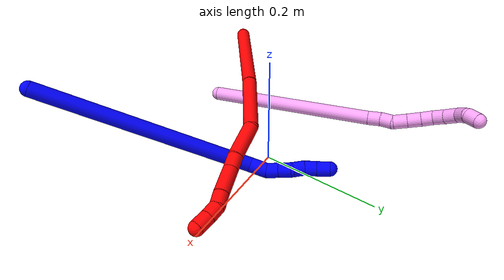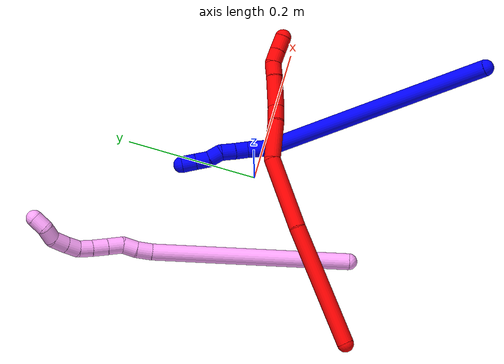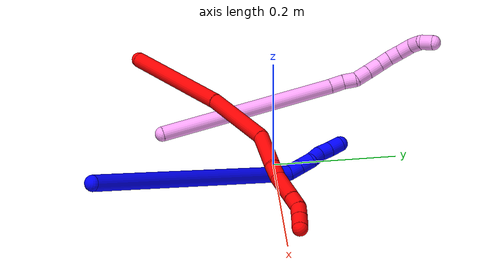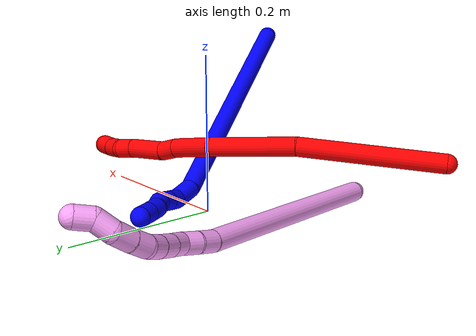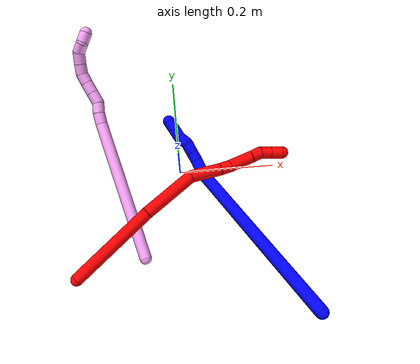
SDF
<sdf version="1.7">
 <world name="default">
  <model name="1">
   <static>0</static>
   <link name="1">
    <collision name="collision-cylinder-e_1_1_4">
     <pose>-0.010049 0.006523 -0.180957 -3.10556 -0.055438 1.98908</pose>
     <geometry><cylinder><radius>0.0125</radius><length>0.362706</length></cylinder></geometry>
     <surface>
      <friction><ode><mu>1.16</mu><mu2>1.16</mu2><slip1>0</slip1><slip2>0</slip2></ode></friction>
      <contact><ode><kp>1e+06</kp><kd>1</kd><max_vel>0</max_vel><min_depth>0.001</min_depth></ode></contact>
     </surface>
    </collision>
    <visual name="visual-cylinder-e_1_1_4">
     <pose>-0.010049 0.006523 -0.180957 -3.10556 -0.055438 1.98908</pose>
     <geometry><cylinder><radius>0.0125</radius><length>0.362706</length></cylinder></geometry>
     <material><ambient>0 0 1 1</ambient></material>
    </visual>
    <collision name="collision-cylinder-e_2_4_5">
     <pose>-0.019141 0.017984 -0.376568 -2.81655 0.06178 -0.372534</pose>
     <geometry><cylinder><radius>0.0125</radius><length>0.030987</length></cylinder></geometry>
     <surface>
      <friction><ode><mu>1.16</mu><mu2>1.16</mu2><slip1>0</slip1><slip2>0</slip2></ode></friction>
      <contact><ode><kp>1e+06</kp><kd>1</kd><max_vel>0</max_vel><min_depth>0.001</min_depth></ode></contact>
     </surface>
    </collision>
    <visual name="visual-cylinder-e_2_4_5">
     <pose>-0.019141 0.017984 -0.376568 -2.81655 0.06178 -0.372534</pose>
     <geometry><cylinder><radius>0.0125</radius><length>0.030987</length></cylinder></geometry>
     <material><ambient>0 0 1 1</ambient></material>
    </visual>
    <collision name="collision-cylinder-e_3_5_6">
     <pose>-0.020491 0.029134 -0.399525 -2.49933 -0.21892 0.638182</pose>
     <geometry><cylinder><radius>0.0125</radius><length>0.021246</length></cylinder></geometry>
     <surface>
      <friction><ode><mu>1.16</mu><mu2>1.16</mu2><slip1>0</slip1><slip2>0</slip2></ode></friction>
      <contact><ode><kp>1e+06</kp><kd>1</kd><max_vel>0</max_vel><min_depth>0.001</min_depth></ode></contact>
     </surface>
    </collision>
    <visual name="visual-cylinder-e_3_5_6">
     <pose>-0.020491 0.029134 -0.399525 -2.49933 -0.21892 0.638182</pose>
     <geometry><cylinder><radius>0.0125</radius><length>0.021246</length></cylinder></geometry>
     <material><ambient>0 0 1 1</ambient></material>
    </visual>
    <collision name="collision-cylinder-e_4_6_7">
     <pose>-0.025046 0.042118 -0.416288 -2.46649 -0.204519 0.56888</pose>
     <geometry><cylinder><radius>0.0125</radius><length>0.022135</length></cylinder></geometry>
     <surface>
      <friction><ode><mu>1.16</mu><mu2>1.16</mu2><slip1>0</slip1><slip2>0</slip2></ode></friction>
      <contact><ode><kp>1e+06</kp><kd>1</kd><max_vel>0</max_vel><min_depth>0.001</min_depth></ode></contact>
     </surface>
    </collision>
    <visual name="visual-cylinder-e_4_6_7">
     <pose>-0.025046 0.042118 -0.416288 -2.46649 -0.204519 0.56888</pose>
     <geometry><cylinder><radius>0.0125</radius><length>0.022135</length></cylinder></geometry>
     <material><ambient>0 0 1 1</ambient></material>
    </visual>
    <collision name="collision-cylinder-e_5_7_8">
     <pose>-0.031886 0.051495 -0.433471 -2.85143 -0.467189 2.04022</pose>
     <geometry><cylinder><radius>0.0125</radius><length>0.020394</length></cylinder></geometry>
     <surface>
      <friction><ode><mu>1.16</mu><mu2>1.16</mu2><slip1>0</slip1><slip2>0</slip2></ode></friction>
      <contact><ode><kp>1e+06</kp><kd>1</kd><max_vel>0</max_vel><min_depth>0.001</min_depth></ode></contact>
     </surface>
    </collision>
    <visual name="visual-cylinder-e_5_7_8">
     <pose>-0.031886 0.051495 -0.433471 -2.85143 -0.467189 2.04022</pose>
     <geometry><cylinder><radius>0.0125</radius><length>0.020394</length></cylinder></geometry>
     <material><ambient>0 0 1 1</ambient></material>
    </visual>
    <collision name="collision-cylinder-e_6_8_9">
     <pose>-0.038349 0.058723 -0.45122 -2.66821 -0.182431 0.724912</pose>
     <geometry><cylinder><radius>0.0125</radius><length>0.020623</length></cylinder></geometry>
     <surface>
      <friction><ode><mu>1.16</mu><mu2>1.16</mu2><slip1>0</slip1><slip2>0</slip2></ode></friction>
      <contact><ode><kp>1e+06</kp><kd>1</kd><max_vel>0</max_vel><min_depth>0.001</min_depth></ode></contact>
     </surface>
    </collision>
    <visual name="visual-cylinder-e_6_8_9">
     <pose>-0.038349 0.058723 -0.45122 -2.66821 -0.182431 0.724912</pose>
     <geometry><cylinder><radius>0.0125</radius><length>0.020623</length></cylinder></geometry>
     <material><ambient>0 0 1 1</ambient></material>
    </visual>
    <collision name="collision-cylinder-e_7_9_2">
     <pose>-0.042662 0.06852 -0.469588 -2.63585 -0.224773 0.823591</pose>
     <geometry><cylinder><radius>0.0125</radius><length>0.021909</length></cylinder></geometry>
     <surface>
      <friction><ode><mu>1.16</mu><mu2>1.16</mu2><slip1>0</slip1><slip2>0</slip2></ode></friction>
      <contact><ode><kp>1e+06</kp><kd>1</kd><max_vel>0</max_vel><min_depth>0.001</min_depth></ode></contact>
     </surface>
    </collision>
    <visual name="visual-cylinder-e_7_9_2">
     <pose>-0.042662 0.06852 -0.469588 -2.63585 -0.224773 0.823591</pose>
     <geometry><cylinder><radius>0.0125</radius><length>0.021909</length></cylinder></geometry>
     <material><ambient>0 0 1 1</ambient></material>
    </visual>
    <collision name="collision-sphere-2">
     <pose>-0.045103 0.073693 -0.47893 0 -0 0</pose>
     <geometry><sphere><radius>0.0125</radius></sphere></geometry>
     <surface>
      <friction><ode><mu>1.16</mu><mu2>1.16</mu2><slip1>0</slip1><slip2>0</slip2></ode></friction>
      <contact><ode><kp>1e+06</kp><kd>1</kd><max_vel>0</max_vel><min_depth>0.001</min_depth></ode></contact>
     </surface>
    </collision>
    <visual name="visual-sphere-2">
     <pose>-0.045103 0.073693 -0.47893 0 -0 0</pose>
     <geometry><sphere><radius>0.0125</radius></sphere></geometry>
     <material><ambient>0 0 1 1</ambient></material>
    </visual>
    <collision name="collision-sphere-9">
     <pose>-0.04022 0.063346 -0.460246 0 -0 0</pose>
     <geometry><sphere><radius>0.0125</radius></sphere></geometry>
     <surface>
      <friction><ode><mu>1.16</mu><mu2>1.16</mu2><slip1>0</slip1><slip2>0</slip2></ode></friction>
      <contact><ode><kp>1e+06</kp><kd>1</kd><max_vel>0</max_vel><min_depth>0.001</min_depth></ode></contact>
     </surface>
    </collision>
    <visual name="visual-sphere-9">
     <pose>-0.04022 0.063346 -0.460246 0 -0 0</pose>
     <geometry><sphere><radius>0.0125</radius></sphere></geometry>
     <material><ambient>0 0 1 1</ambient></material>
    </visual>
    <collision name="collision-sphere-4">
     <pose>-0.020097 0.013046 -0.361914 0 -0 0</pose>
     <geometry><sphere><radius>0.0125</radius></sphere></geometry>
     <surface>
      <friction><ode><mu>1.16</mu><mu2>1.16</mu2><slip1>0</slip1><slip2>0</slip2></ode></friction>
      <contact><ode><kp>1e+06</kp><kd>1</kd><max_vel>0</max_vel><min_depth>0.001</min_depth></ode></contact>
     </surface>
    </collision>
    <visual name="visual-sphere-4">
     <pose>-0.020097 0.013046 -0.361914 0 -0 0</pose>
     <geometry><sphere><radius>0.0125</radius></sphere></geometry>
     <material><ambient>0 0 1 1</ambient></material>
    </visual>
    <collision name="collision-sphere-1">
     <geometry><sphere><radius>0.0125</radius></sphere></geometry>
     <surface>
      <friction><ode><mu>1.16</mu><mu2>1.16</mu2><slip1>0</slip1><slip2>0</slip2></ode></friction>
      <contact><ode><kp>1e+06</kp><kd>1</kd><max_vel>0</max_vel><min_depth>0.001</min_depth></ode></contact>
     </surface>
    </collision>
    <visual name="visual-sphere-1">
     <geometry><sphere><radius>0.0125</radius></sphere></geometry>
     <material><ambient>0 0 1 1</ambient></material>
    </visual>
    <collision name="collision-sphere-8">
     <pose>-0.036479 0.0541 -0.442195 0 -0 0</pose>
     <geometry><sphere><radius>0.0125</radius></sphere></geometry>
     <surface>
      <friction><ode><mu>1.16</mu><mu2>1.16</mu2><slip1>0</slip1><slip2>0</slip2></ode></friction>
      <contact><ode><kp>1e+06</kp><kd>1</kd><max_vel>0</max_vel><min_depth>0.001</min_depth></ode></contact>
     </surface>
    </collision>
    <visual name="visual-sphere-8">
     <pose>-0.036479 0.0541 -0.442195 0 -0 0</pose>
     <geometry><sphere><radius>0.0125</radius></sphere></geometry>
     <material><ambient>0 0 1 1</ambient></material>
    </visual>
    <collision name="collision-sphere-5">
     <pose>-0.018184 0.022922 -0.391222 0 -0 0</pose>
     <geometry><sphere><radius>0.0125</radius></sphere></geometry>
     <surface>
      <friction><ode><mu>1.16</mu><mu2>1.16</mu2><slip1>0</slip1><slip2>0</slip2></ode></friction>
      <contact><ode><kp>1e+06</kp><kd>1</kd><max_vel>0</max_vel><min_depth>0.001</min_depth></ode></contact>
     </surface>
    </collision>
    <visual name="visual-sphere-5">
     <pose>-0.018184 0.022922 -0.391222 0 -0 0</pose>
     <geometry><sphere><radius>0.0125</radius></sphere></geometry>
     <material><ambient>0 0 1 1</ambient></material>
    </visual>
    <collision name="collision-sphere-6">
     <pose>-0.022798 0.035345 -0.407828 0 -0 0</pose>
     <geometry><sphere><radius>0.0125</radius></sphere></geometry>
     <surface>
      <friction><ode><mu>1.16</mu><mu2>1.16</mu2><slip1>0</slip1><slip2>0</slip2></ode></friction>
      <contact><ode><kp>1e+06</kp><kd>1</kd><max_vel>0</max_vel><min_depth>0.001</min_depth></ode></contact>
     </surface>
    </collision>
    <visual name="visual-sphere-6">
     <pose>-0.022798 0.035345 -0.407828 0 -0 0</pose>
     <geometry><sphere><radius>0.0125</radius></sphere></geometry>
     <material><ambient>0 0 1 1</ambient></material>
    </visual>
    <collision name="collision-sphere-7">
     <pose>-0.027294 0.04889 -0.424747 0 -0 0</pose>
     <geometry><sphere><radius>0.0125</radius></sphere></geometry>
     <surface>
      <friction><ode><mu>1.16</mu><mu2>1.16</mu2><slip1>0</slip1><slip2>0</slip2></ode></friction>
      <contact><ode><kp>1e+06</kp><kd>1</kd><max_vel>0</max_vel><min_depth>0.001</min_depth></ode></contact>
     </surface>
    </collision>
    <visual name="visual-sphere-7">
     <pose>-0.027294 0.04889 -0.424747 0 -0 0</pose>
     <geometry><sphere><radius>0.0125</radius></sphere></geometry>
     <material><ambient>0 0 1 1</ambient></material>
    </visual>
    <inertial>
     <pose>-0.015207 0.016474 -0.246879 0 -0 0</pose>
     <mass>0.5</mass>
     <inertia>
      <ixx>0.002031</ixx>
      <ixy>0</ixy>
      <ixz>0</ixz>
      <iyy>0.005272</iyy>
      <iyz>0</iyz>
      <izz>3.7e-05</izz>
     </inertia>
    </inertial>
   </link>
   <pose>0.220265 -0.288501 0.169025 1.03811 0.402343 0.28962</pose>
  </model>
  <model name="2">
   <static>0</static>
   <link name="2">
    <collision name="collision-cylinder-e_1_1_4">
     <pose>-0.032811 0.083884 -0.023309 -1.84184 -0.36041 0.470538</pose>
     <geometry><cylinder><radius>0.0125</radius><length>0.18608</length></cylinder></geometry>
     <surface>
      <friction><ode><mu>1.16</mu><mu2>1.16</mu2><slip1>0</slip1><slip2>0</slip2></ode></friction>
      <contact><ode><kp>1e+06</kp><kd>1</kd><max_vel>0</max_vel><min_depth>0.001</min_depth></ode></contact>
     </surface>
    </collision>
    <visual name="visual-cylinder-e_1_1_4">
     <pose>-0.032811 0.083884 -0.023309 -1.84184 -0.36041 0.470538</pose>
     <geometry><cylinder><radius>0.0125</radius><length>0.18608</length></cylinder></geometry>
     <material><ambient>1 0 0 1</ambient></material>
    </visual>
    <collision name="collision-cylinder-e_2_4_5">
     <pose>-0.07971 0.218052 -0.066578 -1.94865 -0.254731 0.372834</pose>
     <geometry><cylinder><radius>0.0125</radius><length>0.111809</length></cylinder></geometry>
     <surface>
      <friction><ode><mu>1.16</mu><mu2>1.16</mu2><slip1>0</slip1><slip2>0</slip2></ode></friction>
      <contact><ode><kp>1e+06</kp><kd>1</kd><max_vel>0</max_vel><min_depth>0.001</min_depth></ode></contact>
     </surface>
    </collision>
    <visual name="visual-cylinder-e_2_4_5">
     <pose>-0.07971 0.218052 -0.066578 -1.94865 -0.254731 0.372834</pose>
     <geometry><cylinder><radius>0.0125</radius><length>0.111809</length></cylinder></geometry>
     <material><ambient>1 0 0 1</ambient></material>
    </visual>
    <collision name="collision-cylinder-e_3_5_6">
     <pose>-0.088161 0.297226 -0.095486 -1.87118 0.184234 -0.249347</pose>
     <geometry><cylinder><radius>0.0125</radius><length>0.06153</length></cylinder></geometry>
     <surface>
      <friction><ode><mu>1.16</mu><mu2>1.16</mu2><slip1>0</slip1><slip2>0</slip2></ode></friction>
      <contact><ode><kp>1e+06</kp><kd>1</kd><max_vel>0</max_vel><min_depth>0.001</min_depth></ode></contact>
     </surface>
    </collision>
    <visual name="visual-cylinder-e_3_5_6">
     <pose>-0.088161 0.297226 -0.095486 -1.87118 0.184234 -0.249347</pose>
     <geometry><cylinder><radius>0.0125</radius><length>0.06153</length></cylinder></geometry>
     <material><ambient>1 0 0 1</ambient></material>
    </visual>
    <collision name="collision-cylinder-e_4_6_7">
     <pose>-0.080582 0.337008 -0.109727 -2.02313 0.159077 -0.253339</pose>
     <geometry><cylinder><radius>0.0125</radius><length>0.02453</length></cylinder></geometry>
     <surface>
      <friction><ode><mu>1.16</mu><mu2>1.16</mu2><slip1>0</slip1><slip2>0</slip2></ode></friction>
      <contact><ode><kp>1e+06</kp><kd>1</kd><max_vel>0</max_vel><min_depth>0.001</min_depth></ode></contact>
     </surface>
    </collision>
    <visual name="visual-cylinder-e_4_6_7">
     <pose>-0.080582 0.337008 -0.109727 -2.02313 0.159077 -0.253339</pose>
     <geometry><cylinder><radius>0.0125</radius><length>0.02453</length></cylinder></geometry>
     <material><ambient>1 0 0 1</ambient></material>
    </visual>
    <collision name="collision-cylinder-e_5_7_8">
     <pose>-0.078611 0.371725 -0.120901 -1.8128 0.001125 -0.001437</pose>
     <geometry><cylinder><radius>0.0125</radius><length>0.049078</length></cylinder></geometry>
     <surface>
      <friction><ode><mu>1.16</mu><mu2>1.16</mu2><slip1>0</slip1><slip2>0</slip2></ode></friction>
      <contact><ode><kp>1e+06</kp><kd>1</kd><max_vel>0</max_vel><min_depth>0.001</min_depth></ode></contact>
     </surface>
    </collision>
    <visual name="visual-cylinder-e_5_7_8">
     <pose>-0.078611 0.371725 -0.120901 -1.8128 0.001125 -0.001437</pose>
     <geometry><cylinder><radius>0.0125</radius><length>0.049078</length></cylinder></geometry>
     <material><ambient>1 0 0 1</ambient></material>
    </visual>
    <collision name="collision-cylinder-e_6_8_9">
     <pose>-0.078625 0.405884 -0.130453 -1.9121 -0.003727 0.005279</pose>
     <geometry><cylinder><radius>0.0125</radius><length>0.021937</length></cylinder></geometry>
     <surface>
      <friction><ode><mu>1.16</mu><mu2>1.16</mu2><slip1>0</slip1><slip2>0</slip2></ode></friction>
      <contact><ode><kp>1e+06</kp><kd>1</kd><max_vel>0</max_vel><min_depth>0.001</min_depth></ode></contact>
     </surface>
    </collision>
    <visual name="visual-cylinder-e_6_8_9">
     <pose>-0.078625 0.405884 -0.130453 -1.9121 -0.003727 0.005279</pose>
     <geometry><cylinder><radius>0.0125</radius><length>0.021937</length></cylinder></geometry>
     <material><ambient>1 0 0 1</ambient></material>
    </visual>
    <collision name="collision-cylinder-e_7_9_10">
     <pose>-0.07477 0.426042 -0.135549 -1.71487 0.374011 -0.430521</pose>
     <geometry><cylinder><radius>0.0125</radius><length>0.021324</length></cylinder></geometry>
     <surface>
      <friction><ode><mu>1.16</mu><mu2>1.16</mu2><slip1>0</slip1><slip2>0</slip2></ode></friction>
      <contact><ode><kp>1e+06</kp><kd>1</kd><max_vel>0</max_vel><min_depth>0.001</min_depth></ode></contact>
     </surface>
    </collision>
    <visual name="visual-cylinder-e_7_9_10">
     <pose>-0.07477 0.426042 -0.135549 -1.71487 0.374011 -0.430521</pose>
     <geometry><cylinder><radius>0.0125</radius><length>0.021324</length></cylinder></geometry>
     <material><ambient>1 0 0 1</ambient></material>
    </visual>
    <collision name="collision-cylinder-e_8_10_2">
     <pose>-0.066586 0.446906 -0.137488 -1.61726 0.370072 -0.38725</pose>
     <geometry><cylinder><radius>0.0125</radius><length>0.023712</length></cylinder></geometry>
     <surface>
      <friction><ode><mu>1.16</mu><mu2>1.16</mu2><slip1>0</slip1><slip2>0</slip2></ode></friction>
      <contact><ode><kp>1e+06</kp><kd>1</kd><max_vel>0</max_vel><min_depth>0.001</min_depth></ode></contact>
     </surface>
    </collision>
    <visual name="visual-cylinder-e_8_10_2">
     <pose>-0.066586 0.446906 -0.137488 -1.61726 0.370072 -0.38725</pose>
     <geometry><cylinder><radius>0.0125</radius><length>0.023712</length></cylinder></geometry>
     <material><ambient>1 0 0 1</ambient></material>
    </visual>
    <collision name="collision-sphere-2">
     <pose>-0.062298 0.457948 -0.138001 0 -0 0</pose>
     <geometry><sphere><radius>0.0125</radius></sphere></geometry>
     <surface>
      <friction><ode><mu>1.16</mu><mu2>1.16</mu2><slip1>0</slip1><slip2>0</slip2></ode></friction>
      <contact><ode><kp>1e+06</kp><kd>1</kd><max_vel>0</max_vel><min_depth>0.001</min_depth></ode></contact>
     </surface>
    </collision>
    <visual name="visual-sphere-2">
     <pose>-0.062298 0.457948 -0.138001 0 -0 0</pose>
     <geometry><sphere><radius>0.0125</radius></sphere></geometry>
     <material><ambient>1 0 0 1</ambient></material>
    </visual>
    <collision name="collision-sphere-10">
     <pose>-0.070875 0.435865 -0.136974 0 -0 0</pose>
     <geometry><sphere><radius>0.0125</radius></sphere></geometry>
     <surface>
      <friction><ode><mu>1.16</mu><mu2>1.16</mu2><slip1>0</slip1><slip2>0</slip2></ode></friction>
      <contact><ode><kp>1e+06</kp><kd>1</kd><max_vel>0</max_vel><min_depth>0.001</min_depth></ode></contact>
     </surface>
    </collision>
    <visual name="visual-sphere-10">
     <pose>-0.070875 0.435865 -0.136974 0 -0 0</pose>
     <geometry><sphere><radius>0.0125</radius></sphere></geometry>
     <material><ambient>1 0 0 1</ambient></material>
    </visual>
    <collision name="collision-sphere-9">
     <pose>-0.078665 0.41622 -0.134124 0 -0 0</pose>
     <geometry><sphere><radius>0.0125</radius></sphere></geometry>
     <surface>
      <friction><ode><mu>1.16</mu><mu2>1.16</mu2><slip1>0</slip1><slip2>0</slip2></ode></friction>
      <contact><ode><kp>1e+06</kp><kd>1</kd><max_vel>0</max_vel><min_depth>0.001</min_depth></ode></contact>
     </surface>
    </collision>
    <visual name="visual-sphere-9">
     <pose>-0.078665 0.41622 -0.134124 0 -0 0</pose>
     <geometry><sphere><radius>0.0125</radius></sphere></geometry>
     <material><ambient>1 0 0 1</ambient></material>
    </visual>
    <collision name="collision-sphere-4">
     <pose>-0.065622 0.167768 -0.046619 0 -0 0</pose>
     <geometry><sphere><radius>0.0125</radius></sphere></geometry>
     <surface>
      <friction><ode><mu>1.16</mu><mu2>1.16</mu2><slip1>0</slip1><slip2>0</slip2></ode></friction>
      <contact><ode><kp>1e+06</kp><kd>1</kd><max_vel>0</max_vel><min_depth>0.001</min_depth></ode></contact>
     </surface>
    </collision>
    <visual name="visual-sphere-4">
     <pose>-0.065622 0.167768 -0.046619 0 -0 0</pose>
     <geometry><sphere><radius>0.0125</radius></sphere></geometry>
     <material><ambient>1 0 0 1</ambient></material>
    </visual>
    <collision name="collision-sphere-1">
     <geometry><sphere><radius>0.0125</radius></sphere></geometry>
     <surface>
      <friction><ode><mu>1.16</mu><mu2>1.16</mu2><slip1>0</slip1><slip2>0</slip2></ode></friction>
      <contact><ode><kp>1e+06</kp><kd>1</kd><max_vel>0</max_vel><min_depth>0.001</min_depth></ode></contact>
     </surface>
    </collision>
    <visual name="visual-sphere-1">
     <geometry><sphere><radius>0.0125</radius></sphere></geometry>
     <material><ambient>1 0 0 1</ambient></material>
    </visual>
    <collision name="collision-sphere-8">
     <pose>-0.078584 0.395548 -0.126782 0 -0 0</pose>
     <geometry><sphere><radius>0.0125</radius></sphere></geometry>
     <surface>
      <friction><ode><mu>1.16</mu><mu2>1.16</mu2><slip1>0</slip1><slip2>0</slip2></ode></friction>
      <contact><ode><kp>1e+06</kp><kd>1</kd><max_vel>0</max_vel><min_depth>0.001</min_depth></ode></contact>
     </surface>
    </collision>
    <visual name="visual-sphere-8">
     <pose>-0.078584 0.395548 -0.126782 0 -0 0</pose>
     <geometry><sphere><radius>0.0125</radius></sphere></geometry>
     <material><ambient>1 0 0 1</ambient></material>
    </visual>
    <collision name="collision-sphere-5">
     <pose>-0.093797 0.268336 -0.086537 0 -0 0</pose>
     <geometry><sphere><radius>0.0125</radius></sphere></geometry>
     <surface>
      <friction><ode><mu>1.16</mu><mu2>1.16</mu2><slip1>0</slip1><slip2>0</slip2></ode></friction>
      <contact><ode><kp>1e+06</kp><kd>1</kd><max_vel>0</max_vel><min_depth>0.001</min_depth></ode></contact>
     </surface>
    </collision>
    <visual name="visual-sphere-5">
     <pose>-0.093797 0.268336 -0.086537 0 -0 0</pose>
     <geometry><sphere><radius>0.0125</radius></sphere></geometry>
     <material><ambient>1 0 0 1</ambient></material>
    </visual>
    <collision name="collision-sphere-6">
     <pose>-0.082525 0.326116 -0.104434 0 -0 0</pose>
     <geometry><sphere><radius>0.0125</radius></sphere></geometry>
     <surface>
      <friction><ode><mu>1.16</mu><mu2>1.16</mu2><slip1>0</slip1><slip2>0</slip2></ode></friction>
      <contact><ode><kp>1e+06</kp><kd>1</kd><max_vel>0</max_vel><min_depth>0.001</min_depth></ode></contact>
     </surface>
    </collision>
    <visual name="visual-sphere-6">
     <pose>-0.082525 0.326116 -0.104434 0 -0 0</pose>
     <geometry><sphere><radius>0.0125</radius></sphere></geometry>
     <material><ambient>1 0 0 1</ambient></material>
    </visual>
    <collision name="collision-sphere-7">
     <pose>-0.078639 0.347901 -0.11502 0 -0 0</pose>
     <geometry><sphere><radius>0.0125</radius></sphere></geometry>
     <surface>
      <friction><ode><mu>1.16</mu><mu2>1.16</mu2><slip1>0</slip1><slip2>0</slip2></ode></friction>
      <contact><ode><kp>1e+06</kp><kd>1</kd><max_vel>0</max_vel><min_depth>0.001</min_depth></ode></contact>
     </surface>
    </collision>
    <visual name="visual-sphere-7">
     <pose>-0.078639 0.347901 -0.11502 0 -0 0</pose>
     <geometry><sphere><radius>0.0125</radius></sphere></geometry>
     <material><ambient>1 0 0 1</ambient></material>
    </visual>
    <inertial>
     <pose>-0.06235 0.226748 -0.070588 0 -0 0</pose>
     <mass>0.5</mass>
     <inertia>
      <ixx>0.000864</ixx>
      <ixy>0</ixy>
      <ixz>0</ixz>
      <iyy>0.000215</iyy>
      <iyz>0</iyz>
      <izz>-0.000432</izz>
     </inertia>
    </inertial>
   </link>
   <pose>-0.215249 -0.203193 0.071728 0.176463 0.428768 -1.26296</pose>
  </model>
  <model name="4">
   <static>0</static>
   <link name="4">
    <collision name="collision-cylinder-e_1_1_4">
     <pose>-0.019997 0.094114 0.11372 -0.691343 -0.134651 0.048556</pose>
     <geometry><cylinder><radius>0.0125</radius><length>0.297923</length></cylinder></geometry>
     <surface>
      <friction><ode><mu>1.16</mu><mu2>1.16</mu2><slip1>0</slip1><slip2>0</slip2></ode></friction>
      <contact><ode><kp>1e+06</kp><kd>1</kd><max_vel>0</max_vel><min_depth>0.001</min_depth></ode></contact>
     </surface>
    </collision>
    <visual name="visual-cylinder-e_1_1_4">
     <pose>-0.019997 0.094114 0.11372 -0.691343 -0.134651 0.048556</pose>
     <geometry><cylinder><radius>0.0125</radius><length>0.297923</length></cylinder></geometry>
     <material><ambient>1 0.65098 0.996078 1</ambient></material>
    </visual>
    <collision name="collision-cylinder-e_2_4_5">
     <pose>-0.043439 0.195428 0.236211 -0.687353 -0.294726 0.106147</pose>
     <geometry><cylinder><radius>0.0125</radius><length>0.023718</length></cylinder></geometry>
     <surface>
      <friction><ode><mu>1.16</mu><mu2>1.16</mu2><slip1>0</slip1><slip2>0</slip2></ode></friction>
      <contact><ode><kp>1e+06</kp><kd>1</kd><max_vel>0</max_vel><min_depth>0.001</min_depth></ode></contact>
     </surface>
    </collision>
    <visual name="visual-cylinder-e_2_4_5">
     <pose>-0.043439 0.195428 0.236211 -0.687353 -0.294726 0.106147</pose>
     <geometry><cylinder><radius>0.0125</radius><length>0.023718</length></cylinder></geometry>
     <material><ambient>1 0.65098 0.996078 1</ambient></material>
    </visual>
    <collision name="collision-cylinder-e_3_5_6">
     <pose>-0.050636 0.207557 0.253913 -0.504228 -0.352479 0.091685</pose>
     <geometry><cylinder><radius>0.0125</radius><length>0.021738</length></cylinder></geometry>
     <surface>
      <friction><ode><mu>1.16</mu><mu2>1.16</mu2><slip1>0</slip1><slip2>0</slip2></ode></friction>
      <contact><ode><kp>1e+06</kp><kd>1</kd><max_vel>0</max_vel><min_depth>0.001</min_depth></ode></contact>
     </surface>
    </collision>
    <visual name="visual-cylinder-e_3_5_6">
     <pose>-0.050636 0.207557 0.253913 -0.504228 -0.352479 0.091685</pose>
     <geometry><cylinder><radius>0.0125</radius><length>0.021738</length></cylinder></geometry>
     <material><ambient>1 0.65098 0.996078 1</ambient></material>
    </visual>
    <collision name="collision-cylinder-e_4_6_7">
     <pose>-0.056728 0.222187 0.26965 -0.959033 -0.194909 0.101587</pose>
     <geometry><cylinder><radius>0.0125</radius><length>0.024161</length></cylinder></geometry>
     <surface>
      <friction><ode><mu>1.16</mu><mu2>1.16</mu2><slip1>0</slip1><slip2>0</slip2></ode></friction>
      <contact><ode><kp>1e+06</kp><kd>1</kd><max_vel>0</max_vel><min_depth>0.001</min_depth></ode></contact>
     </surface>
    </collision>
    <visual name="visual-cylinder-e_4_6_7">
     <pose>-0.056728 0.222187 0.26965 -0.959033 -0.194909 0.101587</pose>
     <geometry><cylinder><radius>0.0125</radius><length>0.024161</length></cylinder></geometry>
     <material><ambient>1 0.65098 0.996078 1</ambient></material>
    </visual>
    <collision name="collision-cylinder-e_5_7_8">
     <pose>-0.061636 0.241429 0.283132 -0.960291 -0.217068 0.113372</pose>
     <geometry><cylinder><radius>0.0125</radius><length>0.023846</length></cylinder></geometry>
     <surface>
      <friction><ode><mu>1.16</mu><mu2>1.16</mu2><slip1>0</slip1><slip2>0</slip2></ode></friction>
      <contact><ode><kp>1e+06</kp><kd>1</kd><max_vel>0</max_vel><min_depth>0.001</min_depth></ode></contact>
     </surface>
    </collision>
    <visual name="visual-cylinder-e_5_7_8">
     <pose>-0.061636 0.241429 0.283132 -0.960291 -0.217068 0.113372</pose>
     <geometry><cylinder><radius>0.0125</radius><length>0.023846</length></cylinder></geometry>
     <material><ambient>1 0.65098 0.996078 1</ambient></material>
    </visual>
    <collision name="collision-cylinder-e_6_8_9">
     <pose>-0.067229 0.259143 0.295502 -0.96224 -0.29486 0.154743</pose>
     <geometry><cylinder><radius>0.0125</radius><length>0.020823</length></cylinder></geometry>
     <surface>
      <friction><ode><mu>1.16</mu><mu2>1.16</mu2><slip1>0</slip1><slip2>0</slip2></ode></friction>
      <contact><ode><kp>1e+06</kp><kd>1</kd><max_vel>0</max_vel><min_depth>0.001</min_depth></ode></contact>
     </surface>
    </collision>
    <visual name="visual-cylinder-e_6_8_9">
     <pose>-0.067229 0.259143 0.295502 -0.96224 -0.29486 0.154743</pose>
     <geometry><cylinder><radius>0.0125</radius><length>0.020823</length></cylinder></geometry>
     <material><ambient>1 0.65098 0.996078 1</ambient></material>
    </visual>
    <collision name="collision-cylinder-e_7_9_10">
     <pose>-0.076494 0.273172 0.307393 -0.757134 -0.631839 0.258573</pose>
     <geometry><cylinder><radius>0.0125</radius><length>0.021128</length></cylinder></geometry>
     <surface>
      <friction><ode><mu>1.16</mu><mu2>1.16</mu2><slip1>0</slip1><slip2>0</slip2></ode></friction>
      <contact><ode><kp>1e+06</kp><kd>1</kd><max_vel>0</max_vel><min_depth>0.001</min_depth></ode></contact>
     </surface>
    </collision>
    <visual name="visual-cylinder-e_7_9_10">
     <pose>-0.076494 0.273172 0.307393 -0.757134 -0.631839 0.258573</pose>
     <geometry><cylinder><radius>0.0125</radius><length>0.021128</length></cylinder></geometry>
     <material><ambient>1 0.65098 0.996078 1</ambient></material>
    </visual>
    <collision name="collision-cylinder-e_8_10_11">
     <pose>-0.090529 0.285068 0.320139 -0.744953 -0.718732 0.291485</pose>
     <geometry><cylinder><radius>0.0125</radius><length>0.02368</length></cylinder></geometry>
     <surface>
      <friction><ode><mu>1.16</mu><mu2>1.16</mu2><slip1>0</slip1><slip2>0</slip2></ode></friction>
      <contact><ode><kp>1e+06</kp><kd>1</kd><max_vel>0</max_vel><min_depth>0.001</min_depth></ode></contact>
     </surface>
    </collision>
    <visual name="visual-cylinder-e_8_10_11">
     <pose>-0.090529 0.285068 0.320139 -0.744953 -0.718732 0.291485</pose>
     <geometry><cylinder><radius>0.0125</radius><length>0.02368</length></cylinder></geometry>
     <material><ambient>1 0.65098 0.996078 1</ambient></material>
    </visual>
    <collision name="collision-cylinder-e_9_11_12">
     <pose>-0.107885 0.291779 0.33203 -0.124848 -1.05808 0.073052</pose>
     <geometry><cylinder><radius>0.0125</radius><length>0.021942</length></cylinder></geometry>
     <surface>
      <friction><ode><mu>1.16</mu><mu2>1.16</mu2><slip1>0</slip1><slip2>0</slip2></ode></friction>
      <contact><ode><kp>1e+06</kp><kd>1</kd><max_vel>0</max_vel><min_depth>0.001</min_depth></ode></contact>
     </surface>
    </collision>
    <visual name="visual-cylinder-e_9_11_12">
     <pose>-0.107885 0.291779 0.33203 -0.124848 -1.05808 0.073052</pose>
     <geometry><cylinder><radius>0.0125</radius><length>0.021942</length></cylinder></geometry>
     <material><ambient>1 0.65098 0.996078 1</ambient></material>
    </visual>
    <collision name="collision-cylinder-e_10_12_2">
     <pose>-0.1229 0.293246 0.346331 -0.08862 -0.544979 0.024779</pose>
     <geometry><cylinder><radius>0.0125</radius><length>0.021041</length></cylinder></geometry>
     <surface>
      <friction><ode><mu>1.16</mu><mu2>1.16</mu2><slip1>0</slip1><slip2>0</slip2></ode></friction>
      <contact><ode><kp>1e+06</kp><kd>1</kd><max_vel>0</max_vel><min_depth>0.001</min_depth></ode></contact>
     </surface>
    </collision>
    <visual name="visual-cylinder-e_10_12_2">
     <pose>-0.1229 0.293246 0.346331 -0.08862 -0.544979 0.024779</pose>
     <geometry><cylinder><radius>0.0125</radius><length>0.021041</length></cylinder></geometry>
     <material><ambient>1 0.65098 0.996078 1</ambient></material>
    </visual>
    <collision name="collision-sphere-2">
     <pose>-0.128353 0.294042 0.355292 0 -0 0</pose>
     <geometry><sphere><radius>0.0125</radius></sphere></geometry>
     <surface>
      <friction><ode><mu>1.16</mu><mu2>1.16</mu2><slip1>0</slip1><slip2>0</slip2></ode></friction>
      <contact><ode><kp>1e+06</kp><kd>1</kd><max_vel>0</max_vel><min_depth>0.001</min_depth></ode></contact>
     </surface>
    </collision>
    <visual name="visual-sphere-2">
     <pose>-0.128353 0.294042 0.355292 0 -0 0</pose>
     <geometry><sphere><radius>0.0125</radius></sphere></geometry>
     <material><ambient>1 0.65098 0.996078 1</ambient></material>
    </visual>
    <collision name="collision-sphere-12">
     <pose>-0.117446 0.29245 0.33737 0 -0 0</pose>
     <geometry><sphere><radius>0.0125</radius></sphere></geometry>
     <surface>
      <friction><ode><mu>1.16</mu><mu2>1.16</mu2><slip1>0</slip1><slip2>0</slip2></ode></friction>
      <contact><ode><kp>1e+06</kp><kd>1</kd><max_vel>0</max_vel><min_depth>0.001</min_depth></ode></contact>
     </surface>
    </collision>
    <visual name="visual-sphere-12">
     <pose>-0.117446 0.29245 0.33737 0 -0 0</pose>
     <geometry><sphere><radius>0.0125</radius></sphere></geometry>
     <material><ambient>1 0.65098 0.996078 1</ambient></material>
    </visual>
    <collision name="collision-sphere-11">
     <pose>-0.098325 0.291109 0.32669 0 -0 0</pose>
     <geometry><sphere><radius>0.0125</radius></sphere></geometry>
     <surface>
      <friction><ode><mu>1.16</mu><mu2>1.16</mu2><slip1>0</slip1><slip2>0</slip2></ode></friction>
      <contact><ode><kp>1e+06</kp><kd>1</kd><max_vel>0</max_vel><min_depth>0.001</min_depth></ode></contact>
     </surface>
    </collision>
    <visual name="visual-sphere-11">
     <pose>-0.098325 0.291109 0.32669 0 -0 0</pose>
     <geometry><sphere><radius>0.0125</radius></sphere></geometry>
     <material><ambient>1 0.65098 0.996078 1</ambient></material>
    </visual>
    <collision name="collision-sphere-10">
     <pose>-0.082734 0.279027 0.313589 0 -0 0</pose>
     <geometry><sphere><radius>0.0125</radius></sphere></geometry>
     <surface>
      <friction><ode><mu>1.16</mu><mu2>1.16</mu2><slip1>0</slip1><slip2>0</slip2></ode></friction>
      <contact><ode><kp>1e+06</kp><kd>1</kd><max_vel>0</max_vel><min_depth>0.001</min_depth></ode></contact>
     </surface>
    </collision>
    <visual name="visual-sphere-10">
     <pose>-0.082734 0.279027 0.313589 0 -0 0</pose>
     <geometry><sphere><radius>0.0125</radius></sphere></geometry>
     <material><ambient>1 0.65098 0.996078 1</ambient></material>
    </visual>
    <collision name="collision-sphere-9">
     <pose>-0.070255 0.267317 0.301197 0 -0 0</pose>
     <geometry><sphere><radius>0.0125</radius></sphere></geometry>
     <surface>
      <friction><ode><mu>1.16</mu><mu2>1.16</mu2><slip1>0</slip1><slip2>0</slip2></ode></friction>
      <contact><ode><kp>1e+06</kp><kd>1</kd><max_vel>0</max_vel><min_depth>0.001</min_depth></ode></contact>
     </surface>
    </collision>
    <visual name="visual-sphere-9">
     <pose>-0.070255 0.267317 0.301197 0 -0 0</pose>
     <geometry><sphere><radius>0.0125</radius></sphere></geometry>
     <material><ambient>1 0.65098 0.996078 1</ambient></material>
    </visual>
    <collision name="collision-sphere-4">
     <pose>-0.039994 0.188228 0.22744 0 -0 0</pose>
     <geometry><sphere><radius>0.0125</radius></sphere></geometry>
     <surface>
      <friction><ode><mu>1.16</mu><mu2>1.16</mu2><slip1>0</slip1><slip2>0</slip2></ode></friction>
      <contact><ode><kp>1e+06</kp><kd>1</kd><max_vel>0</max_vel><min_depth>0.001</min_depth></ode></contact>
     </surface>
    </collision>
    <visual name="visual-sphere-4">
     <pose>-0.039994 0.188228 0.22744 0 -0 0</pose>
     <geometry><sphere><radius>0.0125</radius></sphere></geometry>
     <material><ambient>1 0.65098 0.996078 1</ambient></material>
    </visual>
    <collision name="collision-sphere-1">
     <geometry><sphere><radius>0.0125</radius></sphere></geometry>
     <surface>
      <friction><ode><mu>1.16</mu><mu2>1.16</mu2><slip1>0</slip1><slip2>0</slip2></ode></friction>
      <contact><ode><kp>1e+06</kp><kd>1</kd><max_vel>0</max_vel><min_depth>0.001</min_depth></ode></contact>
     </surface>
    </collision>
    <visual name="visual-sphere-1">
     <geometry><sphere><radius>0.0125</radius></sphere></geometry>
     <material><ambient>1 0.65098 0.996078 1</ambient></material>
    </visual>
    <collision name="collision-sphere-8">
     <pose>-0.064203 0.250969 0.289807 0 -0 0</pose>
     <geometry><sphere><radius>0.0125</radius></sphere></geometry>
     <surface>
      <friction><ode><mu>1.16</mu><mu2>1.16</mu2><slip1>0</slip1><slip2>0</slip2></ode></friction>
      <contact><ode><kp>1e+06</kp><kd>1</kd><max_vel>0</max_vel><min_depth>0.001</min_depth></ode></contact>
     </surface>
    </collision>
    <visual name="visual-sphere-8">
     <pose>-0.064203 0.250969 0.289807 0 -0 0</pose>
     <geometry><sphere><radius>0.0125</radius></sphere></geometry>
     <material><ambient>1 0.65098 0.996078 1</ambient></material>
    </visual>
    <collision name="collision-sphere-5">
     <pose>-0.046884 0.202628 0.244982 0 -0 0</pose>
     <geometry><sphere><radius>0.0125</radius></sphere></geometry>
     <surface>
      <friction><ode><mu>1.16</mu><mu2>1.16</mu2><slip1>0</slip1><slip2>0</slip2></ode></friction>
      <contact><ode><kp>1e+06</kp><kd>1</kd><max_vel>0</max_vel><min_depth>0.001</min_depth></ode></contact>
     </surface>
    </collision>
    <visual name="visual-sphere-5">
     <pose>-0.046884 0.202628 0.244982 0 -0 0</pose>
     <geometry><sphere><radius>0.0125</radius></sphere></geometry>
     <material><ambient>1 0.65098 0.996078 1</ambient></material>
    </visual>
    <collision name="collision-sphere-6">
     <pose>-0.054388 0.212485 0.262844 0 -0 0</pose>
     <geometry><sphere><radius>0.0125</radius></sphere></geometry>
     <surface>
      <friction><ode><mu>1.16</mu><mu2>1.16</mu2><slip1>0</slip1><slip2>0</slip2></ode></friction>
      <contact><ode><kp>1e+06</kp><kd>1</kd><max_vel>0</max_vel><min_depth>0.001</min_depth></ode></contact>
     </surface>
    </collision>
    <visual name="visual-sphere-6">
     <pose>-0.054388 0.212485 0.262844 0 -0 0</pose>
     <geometry><sphere><radius>0.0125</radius></sphere></geometry>
     <material><ambient>1 0.65098 0.996078 1</ambient></material>
    </visual>
    <collision name="collision-sphere-7">
     <pose>-0.059068 0.231889 0.276457 0 -0 0</pose>
     <geometry><sphere><radius>0.0125</radius></sphere></geometry>
     <surface>
      <friction><ode><mu>1.16</mu><mu2>1.16</mu2><slip1>0</slip1><slip2>0</slip2></ode></friction>
      <contact><ode><kp>1e+06</kp><kd>1</kd><max_vel>0</max_vel><min_depth>0.001</min_depth></ode></contact>
     </surface>
    </collision>
    <visual name="visual-sphere-7">
     <pose>-0.059068 0.231889 0.276457 0 -0 0</pose>
     <geometry><sphere><radius>0.0125</radius></sphere></geometry>
     <material><ambient>1 0.65098 0.996078 1</ambient></material>
    </visual>
    <inertial>
     <pose>-0.042084 0.157603 0.186139 0 -0 0</pose>
     <mass>0.5</mass>
     <inertia>
      <ixx>0.002305</ixx>
      <ixy>0</ixy>
      <ixz>0</ixz>
      <iyy>0.001858</iyy>
      <iyz>0</iyz>
      <izz>-0.001076</izz>
     </inertia>
    </inertial>
   </link>
   <pose>-0.086134 -0.174326 0.011464 2.3582 1.05438 -2.74609</pose>
  </model>
 </world>
</sdf>
